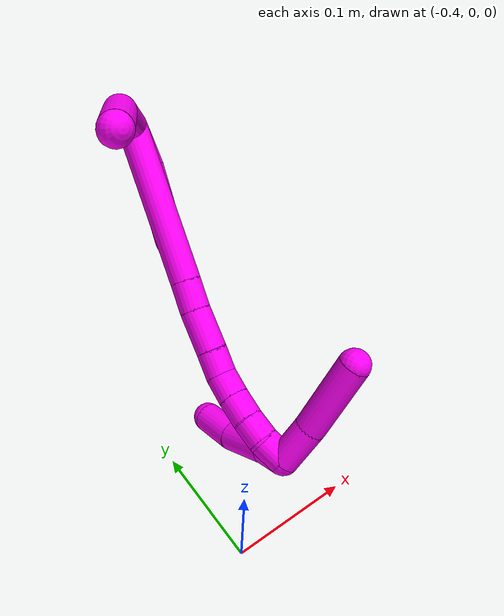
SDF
<sdf version="1.7">
 <world name="default">
  <model name="10">
   <static>0</static>
   <link name="10">
    <collision name="collision-cylinder-e_1_2_8">
     <pose>0.018932 0.003878 -0.032433 -3.02259 0.525285 -2.70548</pose>
     <geometry><cylinder><radius>0.0125</radius><length>0.075507</length></cylinder></geometry>
     <surface>
      <friction><ode><mu>1.16</mu><mu2>1.16</mu2><slip1>0</slip1><slip2>0</slip2></ode></friction>
      <contact><ode><kp>1e+06</kp><kd>1</kd><max_vel>0</max_vel><min_depth>0.001</min_depth></ode></contact>
     </surface>
    </collision>
    <visual name="visual-cylinder-e_1_2_8">
     <pose>0.018932 0.003878 -0.032433 -3.02259 0.525285 -2.70548</pose>
     <geometry><cylinder><radius>0.0125</radius><length>0.075507</length></cylinder></geometry>
     <material><ambient>1 0 0.964706 1</ambient></material>
    </visual>
    <collision name="collision-cylinder-e_2_8_6">
     <pose>0.054029 0.000787 -0.097689 2.93238 0.44893 2.27956</pose>
     <geometry><cylinder><radius>0.0125</radius><length>0.074493</length></cylinder></geometry>
     <surface>
      <friction><ode><mu>1.16</mu><mu2>1.16</mu2><slip1>0</slip1><slip2>0</slip2></ode></friction>
      <contact><ode><kp>1e+06</kp><kd>1</kd><max_vel>0</max_vel><min_depth>0.001</min_depth></ode></contact>
     </surface>
    </collision>
    <visual name="visual-cylinder-e_2_8_6">
     <pose>0.054029 0.000787 -0.097689 2.93238 0.44893 2.27956</pose>
     <geometry><cylinder><radius>0.0125</radius><length>0.074493</length></cylinder></geometry>
     <material><ambient>1 0 0.964706 1</ambient></material>
    </visual>
    <collision name="collision-cylinder-e_1_2_9">
     <pose>-0.005675 -0.017188 -0.002155 1.6955 -0.316562 -0.35788</pose>
     <geometry><cylinder><radius>0.0125</radius><length>0.036457</length></cylinder></geometry>
     <surface>
      <friction><ode><mu>1.16</mu><mu2>1.16</mu2><slip1>0</slip1><slip2>0</slip2></ode></friction>
      <contact><ode><kp>1e+06</kp><kd>1</kd><max_vel>0</max_vel><min_depth>0.001</min_depth></ode></contact>
     </surface>
    </collision>
    <visual name="visual-cylinder-e_1_2_9">
     <pose>-0.005675 -0.017188 -0.002155 1.6955 -0.316562 -0.35788</pose>
     <geometry><cylinder><radius>0.0125</radius><length>0.036457</length></cylinder></geometry>
     <material><ambient>1 0 0.964706 1</ambient></material>
    </visual>
    <collision name="collision-cylinder-e_2_9_5">
     <pose>-0.014463 -0.064291 -0.014548 1.90055 -0.098174 -0.13726</pose>
     <geometry><cylinder><radius>0.0125</radius><length>0.063543</length></cylinder></geometry>
     <surface>
      <friction><ode><mu>1.16</mu><mu2>1.16</mu2><slip1>0</slip1><slip2>0</slip2></ode></friction>
      <contact><ode><kp>1e+06</kp><kd>1</kd><max_vel>0</max_vel><min_depth>0.001</min_depth></ode></contact>
     </surface>
    </collision>
    <visual name="visual-cylinder-e_2_9_5">
     <pose>-0.014463 -0.064291 -0.014548 1.90055 -0.098174 -0.13726</pose>
     <geometry><cylinder><radius>0.0125</radius><length>0.063543</length></cylinder></geometry>
     <material><ambient>1 0 0.964706 1</ambient></material>
    </visual>
    <collision name="collision-cylinder-e_1_2_10">
     <pose>-0.009087 -0.062803 -0.023827 1.93341 -0.134464 -0.194509</pose>
     <geometry><cylinder><radius>0.0125</radius><length>0.135565</length></cylinder></geometry>
     <surface>
      <friction><ode><mu>1.16</mu><mu2>1.16</mu2><slip1>0</slip1><slip2>0</slip2></ode></friction>
      <contact><ode><kp>1e+06</kp><kd>1</kd><max_vel>0</max_vel><min_depth>0.001</min_depth></ode></contact>
     </surface>
    </collision>
    <visual name="visual-cylinder-e_1_2_10">
     <pose>-0.009087 -0.062803 -0.023827 1.93341 -0.134464 -0.194509</pose>
     <geometry><cylinder><radius>0.0125</radius><length>0.135565</length></cylinder></geometry>
     <material><ambient>1 0 0.964706 1</ambient></material>
    </visual>
    <collision name="collision-cylinder-e_2_10_11">
     <pose>-0.019618 -0.137225 -0.052129 1.9385 -0.115484 -0.168035</pose>
     <geometry><cylinder><radius>0.0125</radius><length>0.025069</length></cylinder></geometry>
     <surface>
      <friction><ode><mu>1.16</mu><mu2>1.16</mu2><slip1>0</slip1><slip2>0</slip2></ode></friction>
      <contact><ode><kp>1e+06</kp><kd>1</kd><max_vel>0</max_vel><min_depth>0.001</min_depth></ode></contact>
     </surface>
    </collision>
    <visual name="visual-cylinder-e_2_10_11">
     <pose>-0.019618 -0.137225 -0.052129 1.9385 -0.115484 -0.168035</pose>
     <geometry><cylinder><radius>0.0125</radius><length>0.025069</length></cylinder></geometry>
     <material><ambient>1 0 0.964706 1</ambient></material>
    </visual>
    <collision name="collision-cylinder-e_3_11_12">
     <pose>-0.023763 -0.164366 -0.063933 2.01183 -0.156067 -0.245513</pose>
     <geometry><cylinder><radius>0.0125</radius><length>0.034753</length></cylinder></geometry>
     <surface>
      <friction><ode><mu>1.16</mu><mu2>1.16</mu2><slip1>0</slip1><slip2>0</slip2></ode></friction>
      <contact><ode><kp>1e+06</kp><kd>1</kd><max_vel>0</max_vel><min_depth>0.001</min_depth></ode></contact>
     </surface>
    </collision>
    <visual name="visual-cylinder-e_3_11_12">
     <pose>-0.023763 -0.164366 -0.063933 2.01183 -0.156067 -0.245513</pose>
     <geometry><cylinder><radius>0.0125</radius><length>0.034753</length></cylinder></geometry>
     <material><ambient>1 0 0.964706 1</ambient></material>
    </visual>
    <collision name="collision-cylinder-e_4_12_13">
     <pose>-0.028199 -0.18971 -0.075315 1.96233 -0.161864 -0.241293</pose>
     <geometry><cylinder><radius>0.0125</radius><length>0.021533</length></cylinder></geometry>
     <surface>
      <friction><ode><mu>1.16</mu><mu2>1.16</mu2><slip1>0</slip1><slip2>0</slip2></ode></friction>
      <contact><ode><kp>1e+06</kp><kd>1</kd><max_vel>0</max_vel><min_depth>0.001</min_depth></ode></contact>
     </surface>
    </collision>
    <visual name="visual-cylinder-e_4_12_13">
     <pose>-0.028199 -0.18971 -0.075315 1.96233 -0.161864 -0.241293</pose>
     <geometry><cylinder><radius>0.0125</radius><length>0.021533</length></cylinder></geometry>
     <material><ambient>1 0 0.964706 1</ambient></material>
    </visual>
    <collision name="collision-cylinder-e_5_13_14">
     <pose>-0.031448 -0.207429 -0.086002 2.26936 -0.14577 -0.310809</pose>
     <geometry><cylinder><radius>0.0125</radius><length>0.020846</length></cylinder></geometry>
     <surface>
      <friction><ode><mu>1.16</mu><mu2>1.16</mu2><slip1>0</slip1><slip2>0</slip2></ode></friction>
      <contact><ode><kp>1e+06</kp><kd>1</kd><max_vel>0</max_vel><min_depth>0.001</min_depth></ode></contact>
     </surface>
    </collision>
    <visual name="visual-cylinder-e_5_13_14">
     <pose>-0.031448 -0.207429 -0.086002 2.26936 -0.14577 -0.310809</pose>
     <geometry><cylinder><radius>0.0125</radius><length>0.020846</length></cylinder></geometry>
     <material><ambient>1 0 0.964706 1</ambient></material>
    </visual>
    <collision name="collision-cylinder-e_6_14_15">
     <pose>-0.034774 -0.22291 -0.099812 2.32868 -0.17178 -0.394866</pose>
     <geometry><cylinder><radius>0.0125</radius><length>0.021196</length></cylinder></geometry>
     <surface>
      <friction><ode><mu>1.16</mu><mu2>1.16</mu2><slip1>0</slip1><slip2>0</slip2></ode></friction>
      <contact><ode><kp>1e+06</kp><kd>1</kd><max_vel>0</max_vel><min_depth>0.001</min_depth></ode></contact>
     </surface>
    </collision>
    <visual name="visual-cylinder-e_6_14_15">
     <pose>-0.034774 -0.22291 -0.099812 2.32868 -0.17178 -0.394866</pose>
     <geometry><cylinder><radius>0.0125</radius><length>0.021196</length></cylinder></geometry>
     <material><ambient>1 0 0.964706 1</ambient></material>
    </visual>
    <collision name="collision-cylinder-e_7_15_16">
     <pose>-0.039239 -0.237513 -0.113667 2.33127 -0.267371 -0.60772</pose>
     <geometry><cylinder><radius>0.0125</radius><length>0.020091</length></cylinder></geometry>
     <surface>
      <friction><ode><mu>1.16</mu><mu2>1.16</mu2><slip1>0</slip1><slip2>0</slip2></ode></friction>
      <contact><ode><kp>1e+06</kp><kd>1</kd><max_vel>0</max_vel><min_depth>0.001</min_depth></ode></contact>
     </surface>
    </collision>
    <visual name="visual-cylinder-e_7_15_16">
     <pose>-0.039239 -0.237513 -0.113667 2.33127 -0.267371 -0.60772</pose>
     <geometry><cylinder><radius>0.0125</radius><length>0.020091</length></cylinder></geometry>
     <material><ambient>1 0 0.964706 1</ambient></material>
    </visual>
    <collision name="collision-cylinder-e_8_16_1">
     <pose>-0.046771 -0.251544 -0.126406 2.28361 -0.484468 -0.99057</pose>
     <geometry><cylinder><radius>0.0125</radius><length>0.020947</length></cylinder></geometry>
     <surface>
      <friction><ode><mu>1.16</mu><mu2>1.16</mu2><slip1>0</slip1><slip2>0</slip2></ode></friction>
      <contact><ode><kp>1e+06</kp><kd>1</kd><max_vel>0</max_vel><min_depth>0.001</min_depth></ode></contact>
     </surface>
    </collision>
    <visual name="visual-cylinder-e_8_16_1">
     <pose>-0.046771 -0.251544 -0.126406 2.28361 -0.484468 -0.99057</pose>
     <geometry><cylinder><radius>0.0125</radius><length>0.020947</length></cylinder></geometry>
     <material><ambient>1 0 0.964706 1</ambient></material>
    </visual>
    <collision name="collision-cylinder-e_1_1_17">
     <pose>-0.05197 -0.258502 -0.119832 -0.004283 -0.025349 5.4e-05</pose>
     <geometry><cylinder><radius>0.0125</radius><length>0.025279</length></cylinder></geometry>
     <surface>
      <friction><ode><mu>1.16</mu><mu2>1.16</mu2><slip1>0</slip1><slip2>0</slip2></ode></friction>
      <contact><ode><kp>1e+06</kp><kd>1</kd><max_vel>0</max_vel><min_depth>0.001</min_depth></ode></contact>
     </surface>
    </collision>
    <visual name="visual-cylinder-e_1_1_17">
     <pose>-0.05197 -0.258502 -0.119832 -0.004283 -0.025349 5.4e-05</pose>
     <geometry><cylinder><radius>0.0125</radius><length>0.025279</length></cylinder></geometry>
     <material><ambient>1 0 0.964706 1</ambient></material>
    </visual>
    <collision name="collision-cylinder-e_2_17_18">
     <pose>-0.048944 -0.258517 -0.087292 0.003498 0.166529 0.000292</pose>
     <geometry><cylinder><radius>0.0125</radius><length>0.040368</length></cylinder></geometry>
     <surface>
      <friction><ode><mu>1.16</mu><mu2>1.16</mu2><slip1>0</slip1><slip2>0</slip2></ode></friction>
      <contact><ode><kp>1e+06</kp><kd>1</kd><max_vel>0</max_vel><min_depth>0.001</min_depth></ode></contact>
     </surface>
    </collision>
    <visual name="visual-cylinder-e_2_17_18">
     <pose>-0.048944 -0.258517 -0.087292 0.003498 0.166529 0.000292</pose>
     <geometry><cylinder><radius>0.0125</radius><length>0.040368</length></cylinder></geometry>
     <material><ambient>1 0 0.964706 1</ambient></material>
    </visual>
    <collision name="collision-cylinder-e_3_18_4">
     <pose>-0.043615 -0.255018 -0.050704 -0.210741 0.115759 -0.012256</pose>
     <geometry><cylinder><radius>0.0125</radius><length>0.034353</length></cylinder></geometry>
     <surface>
      <friction><ode><mu>1.16</mu><mu2>1.16</mu2><slip1>0</slip1><slip2>0</slip2></ode></friction>
      <contact><ode><kp>1e+06</kp><kd>1</kd><max_vel>0</max_vel><min_depth>0.001</min_depth></ode></contact>
     </surface>
    </collision>
    <visual name="visual-cylinder-e_3_18_4">
     <pose>-0.043615 -0.255018 -0.050704 -0.210741 0.115759 -0.012256</pose>
     <geometry><cylinder><radius>0.0125</radius><length>0.034353</length></cylinder></geometry>
     <material><ambient>1 0 0.964706 1</ambient></material>
    </visual>
    <collision name="collision-cylinder-e_1_1_19">
     <pose>-0.058495 -0.244187 -0.140916 -2.1023 -0.389676 0.664335</pose>
     <geometry><cylinder><radius>0.0125</radius><length>0.036038</length></cylinder></geometry>
     <surface>
      <friction><ode><mu>1.16</mu><mu2>1.16</mu2><slip1>0</slip1><slip2>0</slip2></ode></friction>
      <contact><ode><kp>1e+06</kp><kd>1</kd><max_vel>0</max_vel><min_depth>0.001</min_depth></ode></contact>
     </surface>
    </collision>
    <visual name="visual-cylinder-e_1_1_19">
     <pose>-0.058495 -0.244187 -0.140916 -2.1023 -0.389676 0.664335</pose>
     <geometry><cylinder><radius>0.0125</radius><length>0.036038</length></cylinder></geometry>
     <material><ambient>1 0 0.964706 1</ambient></material>
    </visual>
    <collision name="collision-cylinder-e_2_19_3">
     <pose>-0.073873 -0.203024 -0.164596 -2.08774 -0.270098 0.458865</pose>
     <geometry><cylinder><radius>0.0125</radius><length>0.063962</length></cylinder></geometry>
     <surface>
      <friction><ode><mu>1.16</mu><mu2>1.16</mu2><slip1>0</slip1><slip2>0</slip2></ode></friction>
      <contact><ode><kp>1e+06</kp><kd>1</kd><max_vel>0</max_vel><min_depth>0.001</min_depth></ode></contact>
     </surface>
    </collision>
    <visual name="visual-cylinder-e_2_19_3">
     <pose>-0.073873 -0.203024 -0.164596 -2.08774 -0.270098 0.458865</pose>
     <geometry><cylinder><radius>0.0125</radius><length>0.063962</length></cylinder></geometry>
     <material><ambient>1 0 0.964706 1</ambient></material>
    </visual>
    <collision name="collision-sphere-3">
     <pose>-0.082407 -0.17623 -0.179829 0 -0 0</pose>
     <geometry><sphere><radius>0.0125</radius></sphere></geometry>
     <surface>
      <friction><ode><mu>1.16</mu><mu2>1.16</mu2><slip1>0</slip1><slip2>0</slip2></ode></friction>
      <contact><ode><kp>1e+06</kp><kd>1</kd><max_vel>0</max_vel><min_depth>0.001</min_depth></ode></contact>
     </surface>
    </collision>
    <visual name="visual-sphere-3">
     <pose>-0.082407 -0.17623 -0.179829 0 -0 0</pose>
     <geometry><sphere><radius>0.0125</radius></sphere></geometry>
     <material><ambient>1 0 0.964706 1</ambient></material>
    </visual>
    <collision name="collision-sphere-19">
     <pose>-0.06534 -0.229818 -0.149364 0 -0 0</pose>
     <geometry><sphere><radius>0.0125</radius></sphere></geometry>
     <surface>
      <friction><ode><mu>1.16</mu><mu2>1.16</mu2><slip1>0</slip1><slip2>0</slip2></ode></friction>
      <contact><ode><kp>1e+06</kp><kd>1</kd><max_vel>0</max_vel><min_depth>0.001</min_depth></ode></contact>
     </surface>
    </collision>
    <visual name="visual-sphere-19">
     <pose>-0.06534 -0.229818 -0.149364 0 -0 0</pose>
     <geometry><sphere><radius>0.0125</radius></sphere></geometry>
     <material><ambient>1 0 0.964706 1</ambient></material>
    </visual>
    <collision name="collision-sphere-10">
     <pose>-0.018174 -0.125606 -0.047654 0 -0 0</pose>
     <geometry><sphere><radius>0.0125</radius></sphere></geometry>
     <surface>
      <friction><ode><mu>1.16</mu><mu2>1.16</mu2><slip1>0</slip1><slip2>0</slip2></ode></friction>
      <contact><ode><kp>1e+06</kp><kd>1</kd><max_vel>0</max_vel><min_depth>0.001</min_depth></ode></contact>
     </surface>
    </collision>
    <visual name="visual-sphere-10">
     <pose>-0.018174 -0.125606 -0.047654 0 -0 0</pose>
     <geometry><sphere><radius>0.0125</radius></sphere></geometry>
     <material><ambient>1 0 0.964706 1</ambient></material>
    </visual>
    <collision name="collision-sphere-5">
     <pose>-0.017577 -0.094206 -0.024786 0 -0 0</pose>
     <geometry><sphere><radius>0.0125</radius></sphere></geometry>
     <surface>
      <friction><ode><mu>1.16</mu><mu2>1.16</mu2><slip1>0</slip1><slip2>0</slip2></ode></friction>
      <contact><ode><kp>1e+06</kp><kd>1</kd><max_vel>0</max_vel><min_depth>0.001</min_depth></ode></contact>
     </surface>
    </collision>
    <visual name="visual-sphere-5">
     <pose>-0.017577 -0.094206 -0.024786 0 -0 0</pose>
     <geometry><sphere><radius>0.0125</radius></sphere></geometry>
     <material><ambient>1 0 0.964706 1</ambient></material>
    </visual>
    <collision name="collision-sphere-6">
     <pose>0.070194 -0.006183 -0.130513 0 -0 0</pose>
     <geometry><sphere><radius>0.0125</radius></sphere></geometry>
     <surface>
      <friction><ode><mu>1.16</mu><mu2>1.16</mu2><slip1>0</slip1><slip2>0</slip2></ode></friction>
      <contact><ode><kp>1e+06</kp><kd>1</kd><max_vel>0</max_vel><min_depth>0.001</min_depth></ode></contact>
     </surface>
    </collision>
    <visual name="visual-sphere-6">
     <pose>0.070194 -0.006183 -0.130513 0 -0 0</pose>
     <geometry><sphere><radius>0.0125</radius></sphere></geometry>
     <material><ambient>1 0 0.964706 1</ambient></material>
    </visual>
    <collision name="collision-sphere-9">
     <pose>-0.011349 -0.034376 -0.004309 0 -0 0</pose>
     <geometry><sphere><radius>0.0125</radius></sphere></geometry>
     <surface>
      <friction><ode><mu>1.16</mu><mu2>1.16</mu2><slip1>0</slip1><slip2>0</slip2></ode></friction>
      <contact><ode><kp>1e+06</kp><kd>1</kd><max_vel>0</max_vel><min_depth>0.001</min_depth></ode></contact>
     </surface>
    </collision>
    <visual name="visual-sphere-9">
     <pose>-0.011349 -0.034376 -0.004309 0 -0 0</pose>
     <geometry><sphere><radius>0.0125</radius></sphere></geometry>
     <material><ambient>1 0 0.964706 1</ambient></material>
    </visual>
    <collision name="collision-sphere-2">
     <geometry><sphere><radius>0.0125</radius></sphere></geometry>
     <surface>
      <friction><ode><mu>1.16</mu><mu2>1.16</mu2><slip1>0</slip1><slip2>0</slip2></ode></friction>
      <contact><ode><kp>1e+06</kp><kd>1</kd><max_vel>0</max_vel><min_depth>0.001</min_depth></ode></contact>
     </surface>
    </collision>
    <visual name="visual-sphere-2">
     <geometry><sphere><radius>0.0125</radius></sphere></geometry>
     <material><ambient>1 0 0.964706 1</ambient></material>
    </visual>
    <collision name="collision-sphere-8">
     <pose>0.037864 0.007756 -0.064865 0 -0 0</pose>
     <geometry><sphere><radius>0.0125</radius></sphere></geometry>
     <surface>
      <friction><ode><mu>1.16</mu><mu2>1.16</mu2><slip1>0</slip1><slip2>0</slip2></ode></friction>
      <contact><ode><kp>1e+06</kp><kd>1</kd><max_vel>0</max_vel><min_depth>0.001</min_depth></ode></contact>
     </surface>
    </collision>
    <visual name="visual-sphere-8">
     <pose>0.037864 0.007756 -0.064865 0 -0 0</pose>
     <geometry><sphere><radius>0.0125</radius></sphere></geometry>
     <material><ambient>1 0 0.964706 1</ambient></material>
    </visual>
    <collision name="collision-sphere-11">
     <pose>-0.021062 -0.148843 -0.056605 0 -0 0</pose>
     <geometry><sphere><radius>0.0125</radius></sphere></geometry>
     <surface>
      <friction><ode><mu>1.16</mu><mu2>1.16</mu2><slip1>0</slip1><slip2>0</slip2></ode></friction>
      <contact><ode><kp>1e+06</kp><kd>1</kd><max_vel>0</max_vel><min_depth>0.001</min_depth></ode></contact>
     </surface>
    </collision>
    <visual name="visual-sphere-11">
     <pose>-0.021062 -0.148843 -0.056605 0 -0 0</pose>
     <geometry><sphere><radius>0.0125</radius></sphere></geometry>
     <material><ambient>1 0 0.964706 1</ambient></material>
    </visual>
    <collision name="collision-sphere-12">
     <pose>-0.026464 -0.179888 -0.07126 0 -0 0</pose>
     <geometry><sphere><radius>0.0125</radius></sphere></geometry>
     <surface>
      <friction><ode><mu>1.16</mu><mu2>1.16</mu2><slip1>0</slip1><slip2>0</slip2></ode></friction>
      <contact><ode><kp>1e+06</kp><kd>1</kd><max_vel>0</max_vel><min_depth>0.001</min_depth></ode></contact>
     </surface>
    </collision>
    <visual name="visual-sphere-12">
     <pose>-0.026464 -0.179888 -0.07126 0 -0 0</pose>
     <geometry><sphere><radius>0.0125</radius></sphere></geometry>
     <material><ambient>1 0 0.964706 1</ambient></material>
    </visual>
    <collision name="collision-sphere-13">
     <pose>-0.029935 -0.199532 -0.07937 0 -0 0</pose>
     <geometry><sphere><radius>0.0125</radius></sphere></geometry>
     <surface>
      <friction><ode><mu>1.16</mu><mu2>1.16</mu2><slip1>0</slip1><slip2>0</slip2></ode></friction>
      <contact><ode><kp>1e+06</kp><kd>1</kd><max_vel>0</max_vel><min_depth>0.001</min_depth></ode></contact>
     </surface>
    </collision>
    <visual name="visual-sphere-13">
     <pose>-0.029935 -0.199532 -0.07937 0 -0 0</pose>
     <geometry><sphere><radius>0.0125</radius></sphere></geometry>
     <material><ambient>1 0 0.964706 1</ambient></material>
    </visual>
    <collision name="collision-sphere-14">
     <pose>-0.032962 -0.215326 -0.092634 0 -0 0</pose>
     <geometry><sphere><radius>0.0125</radius></sphere></geometry>
     <surface>
      <friction><ode><mu>1.16</mu><mu2>1.16</mu2><slip1>0</slip1><slip2>0</slip2></ode></friction>
      <contact><ode><kp>1e+06</kp><kd>1</kd><max_vel>0</max_vel><min_depth>0.001</min_depth></ode></contact>
     </surface>
    </collision>
    <visual name="visual-sphere-14">
     <pose>-0.032962 -0.215326 -0.092634 0 -0 0</pose>
     <geometry><sphere><radius>0.0125</radius></sphere></geometry>
     <material><ambient>1 0 0.964706 1</ambient></material>
    </visual>
    <collision name="collision-sphere-15">
     <pose>-0.036586 -0.230494 -0.106989 0 -0 0</pose>
     <geometry><sphere><radius>0.0125</radius></sphere></geometry>
     <surface>
      <friction><ode><mu>1.16</mu><mu2>1.16</mu2><slip1>0</slip1><slip2>0</slip2></ode></friction>
      <contact><ode><kp>1e+06</kp><kd>1</kd><max_vel>0</max_vel><min_depth>0.001</min_depth></ode></contact>
     </surface>
    </collision>
    <visual name="visual-sphere-15">
     <pose>-0.036586 -0.230494 -0.106989 0 -0 0</pose>
     <geometry><sphere><radius>0.0125</radius></sphere></geometry>
     <material><ambient>1 0 0.964706 1</ambient></material>
    </visual>
    <collision name="collision-sphere-16">
     <pose>-0.041893 -0.244532 -0.120345 0 -0 0</pose>
     <geometry><sphere><radius>0.0125</radius></sphere></geometry>
     <surface>
      <friction><ode><mu>1.16</mu><mu2>1.16</mu2><slip1>0</slip1><slip2>0</slip2></ode></friction>
      <contact><ode><kp>1e+06</kp><kd>1</kd><max_vel>0</max_vel><min_depth>0.001</min_depth></ode></contact>
     </surface>
    </collision>
    <visual name="visual-sphere-16">
     <pose>-0.041893 -0.244532 -0.120345 0 -0 0</pose>
     <geometry><sphere><radius>0.0125</radius></sphere></geometry>
     <material><ambient>1 0 0.964706 1</ambient></material>
    </visual>
    <collision name="collision-sphere-1">
     <pose>-0.051649 -0.258556 -0.132467 0 -0 0</pose>
     <geometry><sphere><radius>0.0125</radius></sphere></geometry>
     <surface>
      <friction><ode><mu>1.16</mu><mu2>1.16</mu2><slip1>0</slip1><slip2>0</slip2></ode></friction>
      <contact><ode><kp>1e+06</kp><kd>1</kd><max_vel>0</max_vel><min_depth>0.001</min_depth></ode></contact>
     </surface>
    </collision>
    <visual name="visual-sphere-1">
     <pose>-0.051649 -0.258556 -0.132467 0 -0 0</pose>
     <geometry><sphere><radius>0.0125</radius></sphere></geometry>
     <material><ambient>1 0 0.964706 1</ambient></material>
    </visual>
    <collision name="collision-sphere-18">
     <pose>-0.045599 -0.258587 -0.067388 0 -0 0</pose>
     <geometry><sphere><radius>0.0125</radius></sphere></geometry>
     <surface>
      <friction><ode><mu>1.16</mu><mu2>1.16</mu2><slip1>0</slip1><slip2>0</slip2></ode></friction>
      <contact><ode><kp>1e+06</kp><kd>1</kd><max_vel>0</max_vel><min_depth>0.001</min_depth></ode></contact>
     </surface>
    </collision>
    <visual name="visual-sphere-18">
     <pose>-0.045599 -0.258587 -0.067388 0 -0 0</pose>
     <geometry><sphere><radius>0.0125</radius></sphere></geometry>
     <material><ambient>1 0 0.964706 1</ambient></material>
    </visual>
    <collision name="collision-sphere-17">
     <pose>-0.05229 -0.258448 -0.107197 0 -0 0</pose>
     <geometry><sphere><radius>0.0125</radius></sphere></geometry>
     <surface>
      <friction><ode><mu>1.16</mu><mu2>1.16</mu2><slip1>0</slip1><slip2>0</slip2></ode></friction>
      <contact><ode><kp>1e+06</kp><kd>1</kd><max_vel>0</max_vel><min_depth>0.001</min_depth></ode></contact>
     </surface>
    </collision>
    <visual name="visual-sphere-17">
     <pose>-0.05229 -0.258448 -0.107197 0 -0 0</pose>
     <geometry><sphere><radius>0.0125</radius></sphere></geometry>
     <material><ambient>1 0 0.964706 1</ambient></material>
    </visual>
    <collision name="collision-sphere-4">
     <pose>-0.041631 -0.251449 -0.034019 0 -0 0</pose>
     <geometry><sphere><radius>0.0125</radius></sphere></geometry>
     <surface>
      <friction><ode><mu>1.16</mu><mu2>1.16</mu2><slip1>0</slip1><slip2>0</slip2></ode></friction>
      <contact><ode><kp>1e+06</kp><kd>1</kd><max_vel>0</max_vel><min_depth>0.001</min_depth></ode></contact>
     </surface>
    </collision>
    <visual name="visual-sphere-4">
     <pose>-0.041631 -0.251449 -0.034019 0 -0 0</pose>
     <geometry><sphere><radius>0.0125</radius></sphere></geometry>
     <material><ambient>1 0 0.964706 1</ambient></material>
    </visual>
    <inertial>
     <pose>-0.018147 -0.123625 -0.069134 0 -0 0</pose>
     <mass>0.75</mass>
     <inertia>
      <ixx>0.000208</ixx>
      <ixy>0</ixy>
      <ixz>0</ixz>
      <iyy>-6.2e-05</iyy>
      <iyz>0</iyz>
      <izz>0.000203</izz>
     </inertia>
    </inertial>
   </link>
   <pose>-0.312242 0.276289 0.208956 2.17748 -0.299727 2.97923</pose>
  </model>
 </world>
</sdf>
